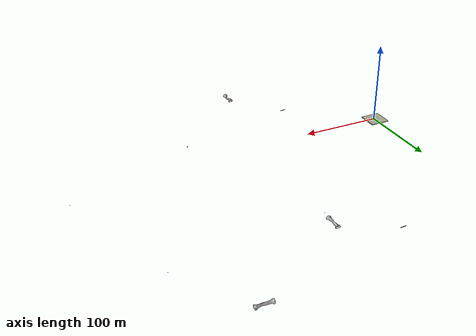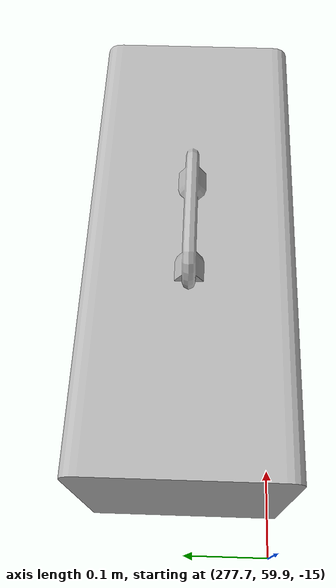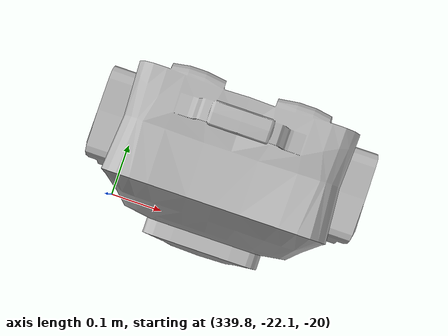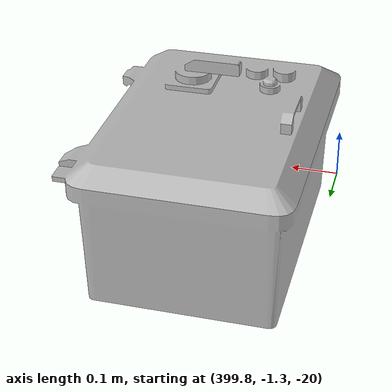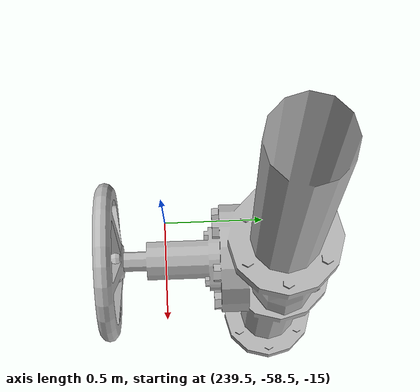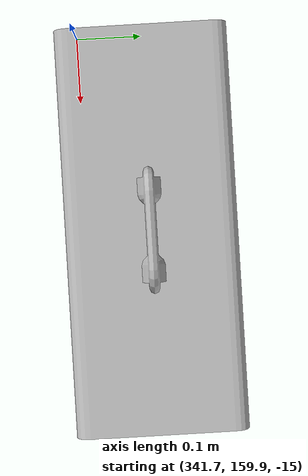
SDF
<sdf version="1.6">
 <world name="default">
  <scene>
   <ambient>0.2 0.2 0.2 1.0</ambient>
   <background>0.34 0.39 0.43 1.0</background>
   <grid>false</grid>
   <origin_visual>false</origin_visual>
  </scene>
  <model name="staging">
   <pose>-1.181716 0 -0.002 0 0 0</pose>
   <static>true</static>
   <link name="link">
    <pose>0 0 -0.5 0 0 0</pose>
    <visual name="visual">
     <geometry><box><size>25 25 1</size></box></geometry>
     <material>
      <script><uri>file://media/materials/scripts/gazebo.material</uri><name>Gazebo/Residential</name></script>
     </material>
    </visual>
    <collision name="collision"><geometry><box><size>25 20 1</size></box></geometry></collision>
   </link>
  </model>
  <model name="start_area">
   <static>true</static>
   <pose>10
        0
        1.5
        0
        0
        0</pose>
   <link name="link">
    <collision name="collision">
     <geometry><box><size>1.0
                5.0
                3.0</size></box></geometry>
     <surface><contact><collide_without_contact>1</collide_without_contact></contact></surface>
    </collision>
    <sensor name="start_area_sensor" type="contact"><contact><collision>collision</collision></contact></sensor>
   </link>
   <plugin name="touch_start_area" filename="libTouchPlugin.so">
    <sensor>start_area_sensor</sensor>
    <time>0.001</time>
    <namespace>subt/start</namespace>
    <enabled>true</enabled>
   </plugin>
  </model>
  <light name="user_spot_light_0" type="spot">
   <pose>12 0 15 0 0.65 0</pose>
   <diffuse>1 1 1 1</diffuse>
   <specular>0.1 0.1 0.1 1</specular>
   <direction>0 0 -1</direction>
   <attenuation>
    <range>30</range>
    <constant>0.001</constant>
    <linear>0.01</linear>
    <quadratic>0.000</quadratic>
   </attenuation>
   <spot><inner_angle>0.0</inner_angle><outer_angle>1.5</outer_angle><falloff>0.01</falloff></spot>
  </light>
  <include>
   <name>tile_2</name>
   <uri>model://constrained_tunnel_tile_tall</uri>
   <pose>280.000000 240.000000 -15.000000 0 0 1.570796</pose>
  </include>
  <include>
   <name>duct_1</name>
   <uri>model://Duct</uri>
   <pose>100.000000 200.000000 -12.223000 1.570796 -1.570796 0.000000</pose>
  </include>
  <include>
   <name>radio_1</name>
   <uri>model://Radio</uri>
   <pose>241.500000 220.000000 -15.000000 0 0 0.000000</pose>
  </include>
  <include>
   <name>backpack_1</name>
   <uri>model://Backpack</uri>
   <pose>219.000000 202.000000 -15.000000 0 0 0.000000</pose>
  </include>
  <include>
   <name>tile_24</name>
   <uri>model://constrained_tunnel_tile_tall</uri>
   <pose>160.000000 160.000000 -15.000000 0 0 0.000000</pose>
  </include>
  <include>
   <name>phone_1</name>
   <uri>model://Phone</uri>
   <pose>260.000000 160.000000 -14.996000 -1.570796 0 0.000000</pose>
  </include>
  <include>
   <name>toolbox_1</name>
   <uri>model://Toolbox</uri>
   <pose>342.000000 160.000000 -15.000000 0 0 0.000000</pose>
  </include>
  <include>
   <name>extinguisher_1</name>
   <uri>model://Extinguisher</uri>
   <pose>158.000000 140.000000 -15.000000 0 0 0.000000</pose>
  </include>
  <include>
   <name>radio_2</name>
   <uri>model://Radio</uri>
   <pose>260.000000 82.300000 -15.000000 0 0 0.000000</pose>
  </include>
  <include>
   <name>toolbox_2</name>
   <uri>model://Toolbox</uri>
   <pose>278.000000 60.000000 -15.000000 0 0 0.000000</pose>
  </include>
  <include>
   <name>phone_2</name>
   <uri>model://Phone</uri>
   <pose>201.800000 20.000000 -14.996000 -1.570796 0 0.000000</pose>
  </include>
  <include>
   <name>electrical_box_1</name>
   <uri>model://Electrical Box</uri>
   <pose>400.000000 -1.000000 -20.000000 0 0 0.000000</pose>
  </include>
  <include>
   <name>backpack_2</name>
   <uri>model://Backpack</uri>
   <pose>340.000000 -22.000000 -20.000000 0 0 0.000000</pose>
  </include>
  <include>
   <name>duct_2</name>
   <uri>model://Duct</uri>
   <pose>93.200000 -80.000000 -2.223000 1.570796 -1.570796 0.000000</pose>
  </include>
  <include>
   <name>phone_3</name>
   <uri>model://Phone</uri>
   <pose>120.800000 -98.400000 -9.996000 1.570796 0 0.000000</pose>
  </include>
  <include>
   <name>valve_1</name>
   <uri>model://Valve</uri>
   <pose>240.000000 -58.000000 -15.000000 0 0 0.000000</pose>
  </include>
  <include>
   <name>valve_2</name>
   <uri>model://Valve</uri>
   <pose>141.750000 -119.000000 -10.000000 0 0 0.000000</pose>
  </include>
  <include>
   <name>tile_102</name>
   <uri>model://constrained_tunnel_tile_short</uri>
   <pose>140.000000 -160.000000 -10.000000 0 0 0.000000</pose>
  </include>
  <include>
   <name>electrical_box_2</name>
   <uri>model://Electrical Box</uri>
   <pose>138.000000 -180.000000 -10.000000 0 0 0.000000</pose>
  </include>
  <include>
   <name>backpack_3</name>
   <uri>model://Backpack</uri>
   <pose>180.000000 -198.000000 -10.000000 0 0 0.000000</pose>
  </include>
  <include>
   <name>extinguisher_2</name>
   <uri>model://Extinguisher</uri>
   <pose>278.000000 -220.000000 -10.000000 0 0 0.000000</pose>
  </include>
  <plugin name="game_logic_plugin" filename="libGameLogicPlugin.so">
   <artifact><name>duct_1</name><type>TYPE_DUCT</type></artifact>
   <artifact><name>radio_1</name><type>TYPE_RADIO</type></artifact>
   <artifact><name>backpack_1</name><type>TYPE_BACKPACK</type></artifact>
   <artifact><name>phone_1</name><type>TYPE_PHONE</type></artifact>
   <artifact><name>toolbox_1</name><type>TYPE_TOOLBOX</type></artifact>
   <artifact><name>extinguisher_1</name><type>TYPE_EXTINGUISHER</type></artifact>
   <artifact><name>radio_2</name><type>TYPE_RADIO</type></artifact>
   <artifact><name>toolbox_2</name><type>TYPE_TOOLBOX</type></artifact>
   <artifact><name>phone_2</name><type>TYPE_PHONE</type></artifact>
   <artifact><name>electrical_box_1</name><type>TYPE_ELECTRICAL_BOX</type></artifact>
   <artifact><name>backpack_2</name><type>TYPE_BACKPACK</type></artifact>
   <artifact><name>duct_2</name><type>TYPE_DUCT</type></artifact>
   <artifact><name>phone_3</name><type>TYPE_PHONE</type></artifact>
   <artifact><name>valve_1</name><type>TYPE_VALVE</type></artifact>
   <artifact><name>valve_2</name><type>TYPE_VALVE</type></artifact>
   <artifact><name>electrical_box_2</name><type>TYPE_ELECTRICAL_BOX</type></artifact>
   <artifact><name>backpack_3</name><type>TYPE_BACKPACK</type></artifact>
   <artifact><name>extinguisher_2</name><type>TYPE_EXTINGUISHER</type></artifact>
  </plugin>
  <plugin name="comms_broker_plugin" filename="libCommsBrokerPlugin.so">
   <comms_model>
    <neighbor_distance_min>0.0</neighbor_distance_min>
    <neighbor_distance_max>100.0</neighbor_distance_max>
    <comms_distance_min>0.0</comms_distance_min>
    <comms_distance_max>100.0</comms_distance_max>
    <comms_drop_probability_min>0.0</comms_drop_probability_min>
    <comms_drop_probability_max>0.0</comms_drop_probability_max>
    <comms_outage_probability>0.0</comms_outage_probability>
    <comms_outage_duration_min>0.0</comms_outage_duration_min>
    <comms_outage_duration_max>10.0</comms_outage_duration_max>
   </comms_model>
  </plugin>
  <plugin name="ros_interface_plugin" filename="librotors_gazebo_ros_interface_plugin.so"/>
  <wind><linear_velocity>0.000000 0.000000 0.000000</linear_velocity></wind>
  <plugin name="wind" filename="libWindPlugin.so">
   <horizontal>
    <magnitude>
     <time_for_rise>10</time_for_rise>
     <sin><amplitude_percent>0.05</amplitude_percent><period>60</period></sin>
     <noise type="gaussian"><mean>0</mean><stddev>0.0002</stddev></noise>
    </magnitude>
    <direction>
     <time_for_rise>30</time_for_rise>
     <sin><amplitude>5</amplitude><period>20</period></sin>
     <noise type="gaussian"><mean>0</mean><stddev>0.03</stddev></noise>
    </direction>
   </horizontal>
   <vertical><noise type="gaussian"><mean>0</mean><stddev>0.03</stddev></noise></vertical>
  </plugin>
 </world>
</sdf>

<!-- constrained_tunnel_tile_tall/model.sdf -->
<sdf version="1.6">
  <model name="constrained_tunnel_tile_tall">
    <static>true</static>
    <link name="link">
      <collision name="collision">
        <geometry>
          <mesh>
            <uri>model://constrained_tunnel_tile_tall/meshes/Constrained_Tall.DAE</uri>
          </mesh>
        </geometry>
      </collision>
      <collision name="collision_ground">
        <geometry>
          <box>
            <size>5 20 0.001</size>
          </box>
        </geometry>
      </collision>
      <visual name="visual">
        <geometry>
          <mesh>
            <uri>model://constrained_tunnel_tile_tall/meshes/Constrained_Tall.DAE</uri>
          </mesh>
        </geometry>
      </visual>
    </link>
  </model>
</sdf>

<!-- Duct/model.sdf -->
<sdf version='1.6'>
  <model name='Duct'>
    <static>true</static>
    <link name='link'>
      <collision name='collision'>
        <geometry>
          <mesh>
            <uri>model://Duct/meshes/Duct.dae</uri>
          </mesh>
        </geometry>
      </collision>
      <visual name='visual'>
        <geometry>
          <mesh>
            <uri>model://Duct/meshes/Duct.dae</uri>
          </mesh>
        </geometry>
      </visual>
    </link>
  </model>
</sdf>

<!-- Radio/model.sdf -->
<sdf version='1.6'>
  <model name='Radio'>
    <static>true</static>
    <link name='link'>
      <collision name='collision'>
        <geometry>
          <mesh>
            <uri>model://Radio/meshes/Radio.dae</uri>
          </mesh>
        </geometry>
      </collision>
      <visual name='visual'>
        <geometry>
          <mesh>
            <uri>model://Radio/meshes/Radio.dae</uri>
          </mesh>
        </geometry>
        <plugin name='light_source_visualize' filename='libLightVisualPlugin.so'>
          <light>
            <id>light_source</id>
            <visualize>false</visualize>
          </light>
        </plugin>
      </visual>
      <light name='light_source' type='point'>
        <pose>0.0137 -0.02 0.109 0 0 0</pose>
        <attenuation>
          <range>2.0</range>
          <constant>0.2</constant>
          <linear>0.10</linear>
          <quadratic>0.1</quadratic>
        </attenuation>
        <diffuse>1 0 0 1</diffuse>
        <specular>1 0 0 1</specular>
      </light>
    </link>

    <plugin name='light_control' filename='libFlashLightPlugin.so'>
      <light>
        <id>link/light_source</id>
        <duration>1.0</duration>
        <interval>3.0</interval>
        <color>1 0 0</color>
      </light>
    </plugin>

  </model>
</sdf>

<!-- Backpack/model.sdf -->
<sdf version='1.6'>
  <model name='Backpack'>
    <static>true</static>
    <link name='link'>
      <collision name='collision'>
        <geometry>
          <mesh>
            <uri>model://Backpack/meshes/Backpack.dae</uri>
          </mesh>
        </geometry>
      </collision>
      <visual name='visual'>
        <geometry>
          <mesh>
            <uri>model://Backpack/meshes/Backpack.dae</uri>
          </mesh>
        </geometry>
      </visual>
    </link>
  </model>
</sdf>

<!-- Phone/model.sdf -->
<sdf version='1.6'>
  <model name='Phone'>
    <static>true</static>
    <link name='link'>
      <collision name='collision'>
        <geometry>
          <mesh>
            <uri>model://Phone/meshes/Phone.dae</uri>
          </mesh>
        </geometry>
      </collision>
      <visual name='visual'>
        <geometry>
          <mesh>
            <uri>model://Phone/meshes/Phone.dae</uri>
          </mesh>
        </geometry>
      </visual>
    </link>
  </model>
</sdf>

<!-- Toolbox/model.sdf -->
<sdf version='1.6'>
  <model name='Toolbox'>
    <static>true</static>
    <link name='link'>
      <collision name='collision'>
        <geometry>
          <mesh>
            <uri>model://Toolbox/meshes/Toolbox.dae</uri>
          </mesh>
        </geometry>
      </collision>
      <visual name='visual'>
        <geometry>
          <mesh>
            <uri>model://Toolbox/meshes/Toolbox.dae</uri>
          </mesh>
        </geometry>
      </visual>
    </link>
  </model>
</sdf>

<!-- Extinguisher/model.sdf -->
<sdf version='1.6'>
  <model name='Extinguisher'>
    <static>true</static>
    <link name='link'>
      <collision name='collision'>
        <geometry>
          <mesh>
            <uri>model://Extinguisher/meshes/Extinguisher.dae</uri>
          </mesh>
        </geometry>
      </collision>
      <visual name='visual'>
        <geometry>
          <mesh>
            <uri>model://Extinguisher/meshes/Extinguisher.dae</uri>
          </mesh>
        </geometry>
      </visual>
    </link>
  </model>
</sdf>

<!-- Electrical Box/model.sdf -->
<sdf version='1.6'>
  <model name='Electrical Box'>
    <static>true</static>
    <link name='link'>
      <pose>0 0 0 1.57 3.14159 0</pose>
      <collision name='collision'>
        <geometry>
          <mesh>
            <uri>model://Electrical Box/meshes/Electrical Box.dae</uri>
          </mesh>
        </geometry>
      </collision>
      <visual name='visual'>
        <geometry>
          <mesh>
            <uri>model://Electrical Box/meshes/Electrical Box.dae</uri>
          </mesh>
        </geometry>
      </visual>
    </link>
  </model>
</sdf>

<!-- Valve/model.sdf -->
<sdf version='1.6'>
  <model name='Valve'>
    <static>true</static>
    <link name='link'>
      <collision name='collision'>
        <geometry>
          <mesh>
            <uri>model://Valve/meshes/Valve.dae</uri>
          </mesh>
        </geometry>
      </collision>
      <visual name='visual'>
        <geometry>
          <mesh>
            <uri>model://Valve/meshes/Valve.dae</uri>
          </mesh>
        </geometry>
      </visual>
    </link>
  </model>
</sdf>

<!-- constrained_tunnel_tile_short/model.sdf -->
<sdf version="1.6">
  <model name="constrained_tunnel_tile_short">
    <static>true</static>
    <link name="link">
      <collision name="collision">
        <geometry>
          <mesh>
            <uri>model://constrained_tunnel_tile_short/meshes/Constrained_Short.DAE</uri>
          </mesh>
        </geometry>
      </collision>
      <collision name="collision_ground">
        <geometry>
          <box>
            <size>5 20 0.001</size>
          </box>
        </geometry>
      </collision>
      <visual name="visual">
        <geometry>
          <mesh>
            <uri>model://constrained_tunnel_tile_short/meshes/Constrained_Short.DAE</uri>
          </mesh>
        </geometry>
      </visual>
    </link>
  </model>
</sdf>
